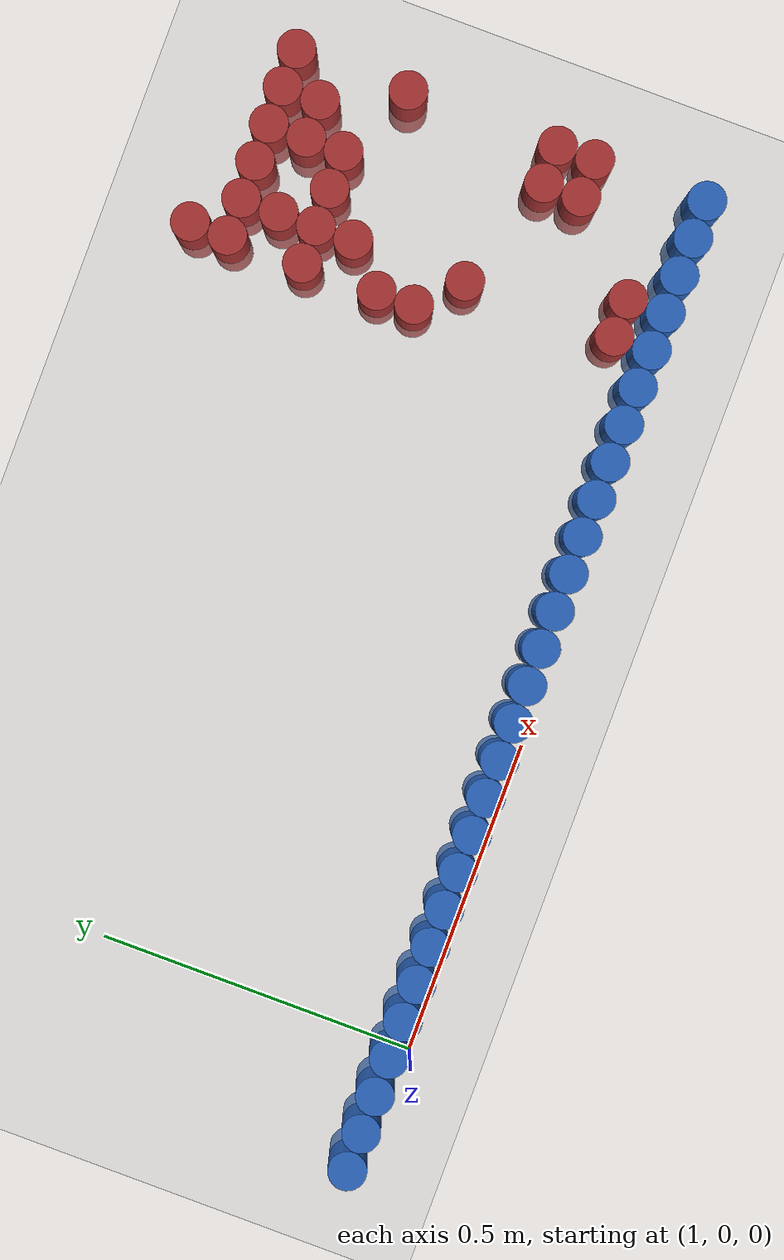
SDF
<sdf version="1.6">
 <world name="default">
  <model name="ground_plane">
   <static>1</static>
   <link name="link">
    <collision name="collision">
     <geometry><plane><normal>0 0 1</normal><size>100 100</size></plane></geometry>
     <surface><friction><ode><mu>100</mu><mu2>50</mu2></ode></friction></surface>
    </collision>
    <visual name="visual">
     <cast_shadows>0</cast_shadows>
     <geometry><plane><normal>0 0 1</normal><size>100 100</size></plane></geometry>
     <material>
      <script><uri>file://media/materials/scripts/gazebo.material</uri><name>Gazebo/Grey</name></script>
     </material>
    </visual>
   </link>
  </model>
  <model name="unit_cylinder_53">
   <static>1</static>
   <pose>0.810000 0.030000 0.000000 0.000000 0.000000 0.000000</pose>
   <link name="link">
    <inertial>
     <mass>1</mass>
     <inertia><ixx>0.145833</ixx><ixy>0</ixy><ixz>0</ixz><iyy>0.145833</iyy><iyz>0</iyz><izz>0.125</izz></inertia>
    </inertial>
    <collision name="collision">
     <geometry><cylinder><radius>0.030000</radius><length>0.5</length></cylinder></geometry>
    </collision>
    <visual name="visual">
     <geometry><cylinder><radius>0.030000</radius><length>0.5</length></cylinder></geometry>
     <material>
      <ambient>0.152000 0.379000 0.720000 1</ambient>
      <diffuse>0.152000 0.379000 0.720000 1</diffuse>
     </material>
     <material>
      <script><name>Gazebo/Grey</name><uri>file://media/materials/scripts/gazebo.material</uri></script>
     </material>
    </visual>
   </link>
  </model>
  <model name="unit_cylinder_55">
   <static>1</static>
   <pose>0.870000 0.030000 0.000000 0.000000 0.000000 0.000000</pose>
   <link name="link">
    <inertial>
     <mass>1</mass>
     <inertia><ixx>0.145833</ixx><ixy>0</ixy><ixz>0</ixz><iyy>0.145833</iyy><iyz>0</iyz><izz>0.125</izz></inertia>
    </inertial>
    <collision name="collision">
     <geometry><cylinder><radius>0.030000</radius><length>0.5</length></cylinder></geometry>
    </collision>
    <visual name="visual">
     <geometry><cylinder><radius>0.030000</radius><length>0.5</length></cylinder></geometry>
     <material>
      <ambient>0.152000 0.379000 0.720000 1</ambient>
      <diffuse>0.152000 0.379000 0.720000 1</diffuse>
     </material>
     <material>
      <script><name>Gazebo/Grey</name><uri>file://media/materials/scripts/gazebo.material</uri></script>
     </material>
    </visual>
   </link>
  </model>
  <model name="unit_cylinder_57">
   <static>1</static>
   <pose>0.930000 0.030000 0.000000 0.000000 0.000000 0.000000</pose>
   <link name="link">
    <inertial>
     <mass>1</mass>
     <inertia><ixx>0.145833</ixx><ixy>0</ixy><ixz>0</ixz><iyy>0.145833</iyy><iyz>0</iyz><izz>0.125</izz></inertia>
    </inertial>
    <collision name="collision">
     <geometry><cylinder><radius>0.030000</radius><length>0.5</length></cylinder></geometry>
    </collision>
    <visual name="visual">
     <geometry><cylinder><radius>0.030000</radius><length>0.5</length></cylinder></geometry>
     <material>
      <ambient>0.152000 0.379000 0.720000 1</ambient>
      <diffuse>0.152000 0.379000 0.720000 1</diffuse>
     </material>
     <material>
      <script><name>Gazebo/Grey</name><uri>file://media/materials/scripts/gazebo.material</uri></script>
     </material>
    </visual>
   </link>
  </model>
  <model name="unit_cylinder_59">
   <static>1</static>
   <pose>0.990000 0.030000 0.000000 0.000000 0.000000 0.000000</pose>
   <link name="link">
    <inertial>
     <mass>1</mass>
     <inertia><ixx>0.145833</ixx><ixy>0</ixy><ixz>0</ixz><iyy>0.145833</iyy><iyz>0</iyz><izz>0.125</izz></inertia>
    </inertial>
    <collision name="collision">
     <geometry><cylinder><radius>0.030000</radius><length>0.5</length></cylinder></geometry>
    </collision>
    <visual name="visual">
     <geometry><cylinder><radius>0.030000</radius><length>0.5</length></cylinder></geometry>
     <material>
      <ambient>0.152000 0.379000 0.720000 1</ambient>
      <diffuse>0.152000 0.379000 0.720000 1</diffuse>
     </material>
     <material>
      <script><name>Gazebo/Grey</name><uri>file://media/materials/scripts/gazebo.material</uri></script>
     </material>
    </visual>
   </link>
  </model>
  <model name="unit_cylinder_61">
   <static>1</static>
   <pose>1.050000 0.030000 0.000000 0.000000 0.000000 0.000000</pose>
   <link name="link">
    <inertial>
     <mass>1</mass>
     <inertia><ixx>0.145833</ixx><ixy>0</ixy><ixz>0</ixz><iyy>0.145833</iyy><iyz>0</iyz><izz>0.125</izz></inertia>
    </inertial>
    <collision name="collision">
     <geometry><cylinder><radius>0.030000</radius><length>0.5</length></cylinder></geometry>
    </collision>
    <visual name="visual">
     <geometry><cylinder><radius>0.030000</radius><length>0.5</length></cylinder></geometry>
     <material>
      <ambient>0.152000 0.379000 0.720000 1</ambient>
      <diffuse>0.152000 0.379000 0.720000 1</diffuse>
     </material>
     <material>
      <script><name>Gazebo/Grey</name><uri>file://media/materials/scripts/gazebo.material</uri></script>
     </material>
    </visual>
   </link>
  </model>
  <model name="unit_cylinder_63">
   <static>1</static>
   <pose>1.110000 0.030000 0.000000 0.000000 0.000000 0.000000</pose>
   <link name="link">
    <inertial>
     <mass>1</mass>
     <inertia><ixx>0.145833</ixx><ixy>0</ixy><ixz>0</ixz><iyy>0.145833</iyy><iyz>0</iyz><izz>0.125</izz></inertia>
    </inertial>
    <collision name="collision">
     <geometry><cylinder><radius>0.030000</radius><length>0.5</length></cylinder></geometry>
    </collision>
    <visual name="visual">
     <geometry><cylinder><radius>0.030000</radius><length>0.5</length></cylinder></geometry>
     <material>
      <ambient>0.152000 0.379000 0.720000 1</ambient>
      <diffuse>0.152000 0.379000 0.720000 1</diffuse>
     </material>
     <material>
      <script><name>Gazebo/Grey</name><uri>file://media/materials/scripts/gazebo.material</uri></script>
     </material>
    </visual>
   </link>
  </model>
  <model name="unit_cylinder_65">
   <static>1</static>
   <pose>1.170000 0.030000 0.000000 0.000000 0.000000 0.000000</pose>
   <link name="link">
    <inertial>
     <mass>1</mass>
     <inertia><ixx>0.145833</ixx><ixy>0</ixy><ixz>0</ixz><iyy>0.145833</iyy><iyz>0</iyz><izz>0.125</izz></inertia>
    </inertial>
    <collision name="collision">
     <geometry><cylinder><radius>0.030000</radius><length>0.5</length></cylinder></geometry>
    </collision>
    <visual name="visual">
     <geometry><cylinder><radius>0.030000</radius><length>0.5</length></cylinder></geometry>
     <material>
      <ambient>0.152000 0.379000 0.720000 1</ambient>
      <diffuse>0.152000 0.379000 0.720000 1</diffuse>
     </material>
     <material>
      <script><name>Gazebo/Grey</name><uri>file://media/materials/scripts/gazebo.material</uri></script>
     </material>
    </visual>
   </link>
  </model>
  <model name="unit_cylinder_67">
   <static>1</static>
   <pose>1.230000 0.030000 0.000000 0.000000 0.000000 0.000000</pose>
   <link name="link">
    <inertial>
     <mass>1</mass>
     <inertia><ixx>0.145833</ixx><ixy>0</ixy><ixz>0</ixz><iyy>0.145833</iyy><iyz>0</iyz><izz>0.125</izz></inertia>
    </inertial>
    <collision name="collision">
     <geometry><cylinder><radius>0.030000</radius><length>0.5</length></cylinder></geometry>
    </collision>
    <visual name="visual">
     <geometry><cylinder><radius>0.030000</radius><length>0.5</length></cylinder></geometry>
     <material>
      <ambient>0.152000 0.379000 0.720000 1</ambient>
      <diffuse>0.152000 0.379000 0.720000 1</diffuse>
     </material>
     <material>
      <script><name>Gazebo/Grey</name><uri>file://media/materials/scripts/gazebo.material</uri></script>
     </material>
    </visual>
   </link>
  </model>
  <model name="unit_cylinder_69">
   <static>1</static>
   <pose>1.290000 0.030000 0.000000 0.000000 0.000000 0.000000</pose>
   <link name="link">
    <inertial>
     <mass>1</mass>
     <inertia><ixx>0.145833</ixx><ixy>0</ixy><ixz>0</ixz><iyy>0.145833</iyy><iyz>0</iyz><izz>0.125</izz></inertia>
    </inertial>
    <collision name="collision">
     <geometry><cylinder><radius>0.030000</radius><length>0.5</length></cylinder></geometry>
    </collision>
    <visual name="visual">
     <geometry><cylinder><radius>0.030000</radius><length>0.5</length></cylinder></geometry>
     <material>
      <ambient>0.152000 0.379000 0.720000 1</ambient>
      <diffuse>0.152000 0.379000 0.720000 1</diffuse>
     </material>
     <material>
      <script><name>Gazebo/Grey</name><uri>file://media/materials/scripts/gazebo.material</uri></script>
     </material>
    </visual>
   </link>
  </model>
  <model name="unit_cylinder_71">
   <static>1</static>
   <pose>1.350000 0.030000 0.000000 0.000000 0.000000 0.000000</pose>
   <link name="link">
    <inertial>
     <mass>1</mass>
     <inertia><ixx>0.145833</ixx><ixy>0</ixy><ixz>0</ixz><iyy>0.145833</iyy><iyz>0</iyz><izz>0.125</izz></inertia>
    </inertial>
    <collision name="collision">
     <geometry><cylinder><radius>0.030000</radius><length>0.5</length></cylinder></geometry>
    </collision>
    <visual name="visual">
     <geometry><cylinder><radius>0.030000</radius><length>0.5</length></cylinder></geometry>
     <material>
      <ambient>0.152000 0.379000 0.720000 1</ambient>
      <diffuse>0.152000 0.379000 0.720000 1</diffuse>
     </material>
     <material>
      <script><name>Gazebo/Grey</name><uri>file://media/materials/scripts/gazebo.material</uri></script>
     </material>
    </visual>
   </link>
  </model>
  <model name="unit_cylinder_73">
   <static>1</static>
   <pose>1.410000 0.030000 0.000000 0.000000 0.000000 0.000000</pose>
   <link name="link">
    <inertial>
     <mass>1</mass>
     <inertia><ixx>0.145833</ixx><ixy>0</ixy><ixz>0</ixz><iyy>0.145833</iyy><iyz>0</iyz><izz>0.125</izz></inertia>
    </inertial>
    <collision name="collision">
     <geometry><cylinder><radius>0.030000</radius><length>0.5</length></cylinder></geometry>
    </collision>
    <visual name="visual">
     <geometry><cylinder><radius>0.030000</radius><length>0.5</length></cylinder></geometry>
     <material>
      <ambient>0.152000 0.379000 0.720000 1</ambient>
      <diffuse>0.152000 0.379000 0.720000 1</diffuse>
     </material>
     <material>
      <script><name>Gazebo/Grey</name><uri>file://media/materials/scripts/gazebo.material</uri></script>
     </material>
    </visual>
   </link>
  </model>
  <model name="unit_cylinder_75">
   <static>1</static>
   <pose>1.470000 0.030000 0.000000 0.000000 0.000000 0.000000</pose>
   <link name="link">
    <inertial>
     <mass>1</mass>
     <inertia><ixx>0.145833</ixx><ixy>0</ixy><ixz>0</ixz><iyy>0.145833</iyy><iyz>0</iyz><izz>0.125</izz></inertia>
    </inertial>
    <collision name="collision">
     <geometry><cylinder><radius>0.030000</radius><length>0.5</length></cylinder></geometry>
    </collision>
    <visual name="visual">
     <geometry><cylinder><radius>0.030000</radius><length>0.5</length></cylinder></geometry>
     <material>
      <ambient>0.152000 0.379000 0.720000 1</ambient>
      <diffuse>0.152000 0.379000 0.720000 1</diffuse>
     </material>
     <material>
      <script><name>Gazebo/Grey</name><uri>file://media/materials/scripts/gazebo.material</uri></script>
     </material>
    </visual>
   </link>
  </model>
  <model name="unit_cylinder_77">
   <static>1</static>
   <pose>1.530000 0.030000 0.000000 0.000000 0.000000 0.000000</pose>
   <link name="link">
    <inertial>
     <mass>1</mass>
     <inertia><ixx>0.145833</ixx><ixy>0</ixy><ixz>0</ixz><iyy>0.145833</iyy><iyz>0</iyz><izz>0.125</izz></inertia>
    </inertial>
    <collision name="collision">
     <geometry><cylinder><radius>0.030000</radius><length>0.5</length></cylinder></geometry>
    </collision>
    <visual name="visual">
     <geometry><cylinder><radius>0.030000</radius><length>0.5</length></cylinder></geometry>
     <material>
      <ambient>0.152000 0.379000 0.720000 1</ambient>
      <diffuse>0.152000 0.379000 0.720000 1</diffuse>
     </material>
     <material>
      <script><name>Gazebo/Grey</name><uri>file://media/materials/scripts/gazebo.material</uri></script>
     </material>
    </visual>
   </link>
  </model>
  <model name="unit_cylinder_79">
   <static>1</static>
   <pose>1.590000 0.030000 0.000000 0.000000 0.000000 0.000000</pose>
   <link name="link">
    <inertial>
     <mass>1</mass>
     <inertia><ixx>0.145833</ixx><ixy>0</ixy><ixz>0</ixz><iyy>0.145833</iyy><iyz>0</iyz><izz>0.125</izz></inertia>
    </inertial>
    <collision name="collision">
     <geometry><cylinder><radius>0.030000</radius><length>0.5</length></cylinder></geometry>
    </collision>
    <visual name="visual">
     <geometry><cylinder><radius>0.030000</radius><length>0.5</length></cylinder></geometry>
     <material>
      <ambient>0.152000 0.379000 0.720000 1</ambient>
      <diffuse>0.152000 0.379000 0.720000 1</diffuse>
     </material>
     <material>
      <script><name>Gazebo/Grey</name><uri>file://media/materials/scripts/gazebo.material</uri></script>
     </material>
    </visual>
   </link>
  </model>
  <model name="unit_cylinder_81">
   <static>1</static>
   <pose>1.650000 0.030000 0.000000 0.000000 0.000000 0.000000</pose>
   <link name="link">
    <inertial>
     <mass>1</mass>
     <inertia><ixx>0.145833</ixx><ixy>0</ixy><ixz>0</ixz><iyy>0.145833</iyy><iyz>0</iyz><izz>0.125</izz></inertia>
    </inertial>
    <collision name="collision">
     <geometry><cylinder><radius>0.030000</radius><length>0.5</length></cylinder></geometry>
    </collision>
    <visual name="visual">
     <geometry><cylinder><radius>0.030000</radius><length>0.5</length></cylinder></geometry>
     <material>
      <ambient>0.152000 0.379000 0.720000 1</ambient>
      <diffuse>0.152000 0.379000 0.720000 1</diffuse>
     </material>
     <material>
      <script><name>Gazebo/Grey</name><uri>file://media/materials/scripts/gazebo.material</uri></script>
     </material>
    </visual>
   </link>
  </model>
  <model name="unit_cylinder_83">
   <static>1</static>
   <pose>1.710000 0.030000 0.000000 0.000000 0.000000 0.000000</pose>
   <link name="link">
    <inertial>
     <mass>1</mass>
     <inertia><ixx>0.145833</ixx><ixy>0</ixy><ixz>0</ixz><iyy>0.145833</iyy><iyz>0</iyz><izz>0.125</izz></inertia>
    </inertial>
    <collision name="collision">
     <geometry><cylinder><radius>0.030000</radius><length>0.5</length></cylinder></geometry>
    </collision>
    <visual name="visual">
     <geometry><cylinder><radius>0.030000</radius><length>0.5</length></cylinder></geometry>
     <material>
      <ambient>0.152000 0.379000 0.720000 1</ambient>
      <diffuse>0.152000 0.379000 0.720000 1</diffuse>
     </material>
     <material>
      <script><name>Gazebo/Grey</name><uri>file://media/materials/scripts/gazebo.material</uri></script>
     </material>
    </visual>
   </link>
  </model>
  <model name="unit_cylinder_85">
   <static>1</static>
   <pose>1.770000 0.030000 0.000000 0.000000 0.000000 0.000000</pose>
   <link name="link">
    <inertial>
     <mass>1</mass>
     <inertia><ixx>0.145833</ixx><ixy>0</ixy><ixz>0</ixz><iyy>0.145833</iyy><iyz>0</iyz><izz>0.125</izz></inertia>
    </inertial>
    <collision name="collision">
     <geometry><cylinder><radius>0.030000</radius><length>0.5</length></cylinder></geometry>
    </collision>
    <visual name="visual">
     <geometry><cylinder><radius>0.030000</radius><length>0.5</length></cylinder></geometry>
     <material>
      <ambient>0.152000 0.379000 0.720000 1</ambient>
      <diffuse>0.152000 0.379000 0.720000 1</diffuse>
     </material>
     <material>
      <script><name>Gazebo/Grey</name><uri>file://media/materials/scripts/gazebo.material</uri></script>
     </material>
    </visual>
   </link>
  </model>
  <model name="unit_cylinder_87">
   <static>1</static>
   <pose>1.830000 0.030000 0.000000 0.000000 0.000000 0.000000</pose>
   <link name="link">
    <inertial>
     <mass>1</mass>
     <inertia><ixx>0.145833</ixx><ixy>0</ixy><ixz>0</ixz><iyy>0.145833</iyy><iyz>0</iyz><izz>0.125</izz></inertia>
    </inertial>
    <collision name="collision">
     <geometry><cylinder><radius>0.030000</radius><length>0.5</length></cylinder></geometry>
    </collision>
    <visual name="visual">
     <geometry><cylinder><radius>0.030000</radius><length>0.5</length></cylinder></geometry>
     <material>
      <ambient>0.152000 0.379000 0.720000 1</ambient>
      <diffuse>0.152000 0.379000 0.720000 1</diffuse>
     </material>
     <material>
      <script><name>Gazebo/Grey</name><uri>file://media/materials/scripts/gazebo.material</uri></script>
     </material>
    </visual>
   </link>
  </model>
  <model name="unit_cylinder_89">
   <static>1</static>
   <pose>1.890000 0.030000 0.000000 0.000000 0.000000 0.000000</pose>
   <link name="link">
    <inertial>
     <mass>1</mass>
     <inertia><ixx>0.145833</ixx><ixy>0</ixy><ixz>0</ixz><iyy>0.145833</iyy><iyz>0</iyz><izz>0.125</izz></inertia>
    </inertial>
    <collision name="collision">
     <geometry><cylinder><radius>0.030000</radius><length>0.5</length></cylinder></geometry>
    </collision>
    <visual name="visual">
     <geometry><cylinder><radius>0.030000</radius><length>0.5</length></cylinder></geometry>
     <material>
      <ambient>0.152000 0.379000 0.720000 1</ambient>
      <diffuse>0.152000 0.379000 0.720000 1</diffuse>
     </material>
     <material>
      <script><name>Gazebo/Grey</name><uri>file://media/materials/scripts/gazebo.material</uri></script>
     </material>
    </visual>
   </link>
  </model>
  <model name="unit_cylinder_91">
   <static>1</static>
   <pose>1.950000 0.030000 0.000000 0.000000 0.000000 0.000000</pose>
   <link name="link">
    <inertial>
     <mass>1</mass>
     <inertia><ixx>0.145833</ixx><ixy>0</ixy><ixz>0</ixz><iyy>0.145833</iyy><iyz>0</iyz><izz>0.125</izz></inertia>
    </inertial>
    <collision name="collision">
     <geometry><cylinder><radius>0.030000</radius><length>0.5</length></cylinder></geometry>
    </collision>
    <visual name="visual">
     <geometry><cylinder><radius>0.030000</radius><length>0.5</length></cylinder></geometry>
     <material>
      <ambient>0.152000 0.379000 0.720000 1</ambient>
      <diffuse>0.152000 0.379000 0.720000 1</diffuse>
     </material>
     <material>
      <script><name>Gazebo/Grey</name><uri>file://media/materials/scripts/gazebo.material</uri></script>
     </material>
    </visual>
   </link>
  </model>
  <model name="unit_cylinder_93">
   <static>1</static>
   <pose>2.010000 0.030000 0.000000 0.000000 0.000000 0.000000</pose>
   <link name="link">
    <inertial>
     <mass>1</mass>
     <inertia><ixx>0.145833</ixx><ixy>0</ixy><ixz>0</ixz><iyy>0.145833</iyy><iyz>0</iyz><izz>0.125</izz></inertia>
    </inertial>
    <collision name="collision">
     <geometry><cylinder><radius>0.030000</radius><length>0.5</length></cylinder></geometry>
    </collision>
    <visual name="visual">
     <geometry><cylinder><radius>0.030000</radius><length>0.5</length></cylinder></geometry>
     <material>
      <ambient>0.152000 0.379000 0.720000 1</ambient>
      <diffuse>0.152000 0.379000 0.720000 1</diffuse>
     </material>
     <material>
      <script><name>Gazebo/Grey</name><uri>file://media/materials/scripts/gazebo.material</uri></script>
     </material>
    </visual>
   </link>
  </model>
  <model name="unit_cylinder_230">
   <static>1</static>
   <pose>2.070000 0.750000 0.000000 0.000000 0.000000 0.000000</pose>
   <link name="link">
    <inertial>
     <mass>1</mass>
     <inertia><ixx>0.145833</ixx><ixy>0</ixy><ixz>0</ixz><iyy>0.145833</iyy><iyz>0</iyz><izz>0.125</izz></inertia>
    </inertial>
    <collision name="collision">
     <geometry><cylinder><radius>0.030000</radius><length>0.5</length></cylinder></geometry>
    </collision>
    <visual name="visual">
     <geometry><cylinder><radius>0.030000</radius><length>0.5</length></cylinder></geometry>
     <material>
      <ambient>0.648000 0.192000 0.192000 1</ambient>
      <diffuse>0.648000 0.192000 0.192000 1</diffuse>
     </material>
     <material>
      <script><name>Gazebo/Grey</name><uri>file://media/materials/scripts/gazebo.material</uri></script>
     </material>
    </visual>
   </link>
  </model>
  <model name="unit_cylinder_241">
   <static>1</static>
   <pose>2.070000 0.690000 0.000000 0.000000 0.000000 0.000000</pose>
   <link name="link">
    <inertial>
     <mass>1</mass>
     <inertia><ixx>0.145833</ixx><ixy>0</ixy><ixz>0</ixz><iyy>0.145833</iyy><iyz>0</iyz><izz>0.125</izz></inertia>
    </inertial>
    <collision name="collision">
     <geometry><cylinder><radius>0.030000</radius><length>0.5</length></cylinder></geometry>
    </collision>
    <visual name="visual">
     <geometry><cylinder><radius>0.030000</radius><length>0.5</length></cylinder></geometry>
     <material>
      <ambient>0.648000 0.192000 0.192000 1</ambient>
      <diffuse>0.648000 0.192000 0.192000 1</diffuse>
     </material>
     <material>
      <script><name>Gazebo/Grey</name><uri>file://media/materials/scripts/gazebo.material</uri></script>
     </material>
    </visual>
   </link>
  </model>
  <model name="unit_cylinder_242">
   <static>1</static>
   <pose>2.130000 0.690000 0.000000 0.000000 0.000000 0.000000</pose>
   <link name="link">
    <inertial>
     <mass>1</mass>
     <inertia><ixx>0.145833</ixx><ixy>0</ixy><ixz>0</ixz><iyy>0.145833</iyy><iyz>0</iyz><izz>0.125</izz></inertia>
    </inertial>
    <collision name="collision">
     <geometry><cylinder><radius>0.030000</radius><length>0.5</length></cylinder></geometry>
    </collision>
    <visual name="visual">
     <geometry><cylinder><radius>0.030000</radius><length>0.5</length></cylinder></geometry>
     <material>
      <ambient>0.648000 0.192000 0.192000 1</ambient>
      <diffuse>0.648000 0.192000 0.192000 1</diffuse>
     </material>
     <material>
      <script><name>Gazebo/Grey</name><uri>file://media/materials/scripts/gazebo.material</uri></script>
     </material>
    </visual>
   </link>
  </model>
  <model name="unit_cylinder_243">
   <static>1</static>
   <pose>2.190000 0.690000 0.000000 0.000000 0.000000 0.000000</pose>
   <link name="link">
    <inertial>
     <mass>1</mass>
     <inertia><ixx>0.145833</ixx><ixy>0</ixy><ixz>0</ixz><iyy>0.145833</iyy><iyz>0</iyz><izz>0.125</izz></inertia>
    </inertial>
    <collision name="collision">
     <geometry><cylinder><radius>0.030000</radius><length>0.5</length></cylinder></geometry>
    </collision>
    <visual name="visual">
     <geometry><cylinder><radius>0.030000</radius><length>0.5</length></cylinder></geometry>
     <material>
      <ambient>0.648000 0.192000 0.192000 1</ambient>
      <diffuse>0.648000 0.192000 0.192000 1</diffuse>
     </material>
     <material>
      <script><name>Gazebo/Grey</name><uri>file://media/materials/scripts/gazebo.material</uri></script>
     </material>
    </visual>
   </link>
  </model>
  <model name="unit_cylinder_244">
   <static>1</static>
   <pose>2.250000 0.690000 0.000000 0.000000 0.000000 0.000000</pose>
   <link name="link">
    <inertial>
     <mass>1</mass>
     <inertia><ixx>0.145833</ixx><ixy>0</ixy><ixz>0</ixz><iyy>0.145833</iyy><iyz>0</iyz><izz>0.125</izz></inertia>
    </inertial>
    <collision name="collision">
     <geometry><cylinder><radius>0.030000</radius><length>0.5</length></cylinder></geometry>
    </collision>
    <visual name="visual">
     <geometry><cylinder><radius>0.030000</radius><length>0.5</length></cylinder></geometry>
     <material>
      <ambient>0.648000 0.192000 0.192000 1</ambient>
      <diffuse>0.648000 0.192000 0.192000 1</diffuse>
     </material>
     <material>
      <script><name>Gazebo/Grey</name><uri>file://media/materials/scripts/gazebo.material</uri></script>
     </material>
    </visual>
   </link>
  </model>
  <model name="unit_cylinder_245">
   <static>1</static>
   <pose>2.310000 0.690000 0.000000 0.000000 0.000000 0.000000</pose>
   <link name="link">
    <inertial>
     <mass>1</mass>
     <inertia><ixx>0.145833</ixx><ixy>0</ixy><ixz>0</ixz><iyy>0.145833</iyy><iyz>0</iyz><izz>0.125</izz></inertia>
    </inertial>
    <collision name="collision">
     <geometry><cylinder><radius>0.030000</radius><length>0.5</length></cylinder></geometry>
    </collision>
    <visual name="visual">
     <geometry><cylinder><radius>0.030000</radius><length>0.5</length></cylinder></geometry>
     <material>
      <ambient>0.648000 0.192000 0.192000 1</ambient>
      <diffuse>0.648000 0.192000 0.192000 1</diffuse>
     </material>
     <material>
      <script><name>Gazebo/Grey</name><uri>file://media/materials/scripts/gazebo.material</uri></script>
     </material>
    </visual>
   </link>
  </model>
  <model name="unit_cylinder_246">
   <static>1</static>
   <pose>2.370000 0.690000 0.000000 0.000000 0.000000 0.000000</pose>
   <link name="link">
    <inertial>
     <mass>1</mass>
     <inertia><ixx>0.145833</ixx><ixy>0</ixy><ixz>0</ixz><iyy>0.145833</iyy><iyz>0</iyz><izz>0.125</izz></inertia>
    </inertial>
    <collision name="collision">
     <geometry><cylinder><radius>0.030000</radius><length>0.5</length></cylinder></geometry>
    </collision>
    <visual name="visual">
     <geometry><cylinder><radius>0.030000</radius><length>0.5</length></cylinder></geometry>
     <material>
      <ambient>0.648000 0.192000 0.192000 1</ambient>
      <diffuse>0.648000 0.192000 0.192000 1</diffuse>
     </material>
     <material>
      <script><name>Gazebo/Grey</name><uri>file://media/materials/scripts/gazebo.material</uri></script>
     </material>
    </visual>
   </link>
  </model>
  <model name="unit_cylinder_253">
   <static>1</static>
   <pose>2.130000 0.630000 0.000000 0.000000 0.000000 0.000000</pose>
   <link name="link">
    <inertial>
     <mass>1</mass>
     <inertia><ixx>0.145833</ixx><ixy>0</ixy><ixz>0</ixz><iyy>0.145833</iyy><iyz>0</iyz><izz>0.125</izz></inertia>
    </inertial>
    <collision name="collision">
     <geometry><cylinder><radius>0.030000</radius><length>0.5</length></cylinder></geometry>
    </collision>
    <visual name="visual">
     <geometry><cylinder><radius>0.030000</radius><length>0.5</length></cylinder></geometry>
     <material>
      <ambient>0.648000 0.192000 0.192000 1</ambient>
      <diffuse>0.648000 0.192000 0.192000 1</diffuse>
     </material>
     <material>
      <script><name>Gazebo/Grey</name><uri>file://media/materials/scripts/gazebo.material</uri></script>
     </material>
    </visual>
   </link>
  </model>
  <model name="unit_cylinder_254">
   <static>1</static>
   <pose>2.250000 0.630000 0.000000 0.000000 0.000000 0.000000</pose>
   <link name="link">
    <inertial>
     <mass>1</mass>
     <inertia><ixx>0.145833</ixx><ixy>0</ixy><ixz>0</ixz><iyy>0.145833</iyy><iyz>0</iyz><izz>0.125</izz></inertia>
    </inertial>
    <collision name="collision">
     <geometry><cylinder><radius>0.030000</radius><length>0.5</length></cylinder></geometry>
    </collision>
    <visual name="visual">
     <geometry><cylinder><radius>0.030000</radius><length>0.5</length></cylinder></geometry>
     <material>
      <ambient>0.648000 0.192000 0.192000 1</ambient>
      <diffuse>0.648000 0.192000 0.192000 1</diffuse>
     </material>
     <material>
      <script><name>Gazebo/Grey</name><uri>file://media/materials/scripts/gazebo.material</uri></script>
     </material>
    </visual>
   </link>
  </model>
  <model name="unit_cylinder_255">
   <static>1</static>
   <pose>2.310000 0.630000 0.000000 0.000000 0.000000 0.000000</pose>
   <link name="link">
    <inertial>
     <mass>1</mass>
     <inertia><ixx>0.145833</ixx><ixy>0</ixy><ixz>0</ixz><iyy>0.145833</iyy><iyz>0</iyz><izz>0.125</izz></inertia>
    </inertial>
    <collision name="collision">
     <geometry><cylinder><radius>0.030000</radius><length>0.5</length></cylinder></geometry>
    </collision>
    <visual name="visual">
     <geometry><cylinder><radius>0.030000</radius><length>0.5</length></cylinder></geometry>
     <material>
      <ambient>0.648000 0.192000 0.192000 1</ambient>
      <diffuse>0.648000 0.192000 0.192000 1</diffuse>
     </material>
     <material>
      <script><name>Gazebo/Grey</name><uri>file://media/materials/scripts/gazebo.material</uri></script>
     </material>
    </visual>
   </link>
  </model>
  <model name="unit_cylinder_263">
   <static>1</static>
   <pose>2.070000 0.570000 0.000000 0.000000 0.000000 0.000000</pose>
   <link name="link">
    <inertial>
     <mass>1</mass>
     <inertia><ixx>0.145833</ixx><ixy>0</ixy><ixz>0</ixz><iyy>0.145833</iyy><iyz>0</iyz><izz>0.125</izz></inertia>
    </inertial>
    <collision name="collision">
     <geometry><cylinder><radius>0.030000</radius><length>0.5</length></cylinder></geometry>
    </collision>
    <visual name="visual">
     <geometry><cylinder><radius>0.030000</radius><length>0.5</length></cylinder></geometry>
     <material>
      <ambient>0.648000 0.192000 0.192000 1</ambient>
      <diffuse>0.648000 0.192000 0.192000 1</diffuse>
     </material>
     <material>
      <script><name>Gazebo/Grey</name><uri>file://media/materials/scripts/gazebo.material</uri></script>
     </material>
    </visual>
   </link>
  </model>
  <model name="unit_cylinder_264">
   <static>1</static>
   <pose>2.130000 0.570000 0.000000 0.000000 0.000000 0.000000</pose>
   <link name="link">
    <inertial>
     <mass>1</mass>
     <inertia><ixx>0.145833</ixx><ixy>0</ixy><ixz>0</ixz><iyy>0.145833</iyy><iyz>0</iyz><izz>0.125</izz></inertia>
    </inertial>
    <collision name="collision">
     <geometry><cylinder><radius>0.030000</radius><length>0.5</length></cylinder></geometry>
    </collision>
    <visual name="visual">
     <geometry><cylinder><radius>0.030000</radius><length>0.5</length></cylinder></geometry>
     <material>
      <ambient>0.648000 0.192000 0.192000 1</ambient>
      <diffuse>0.648000 0.192000 0.192000 1</diffuse>
     </material>
     <material>
      <script><name>Gazebo/Grey</name><uri>file://media/materials/scripts/gazebo.material</uri></script>
     </material>
    </visual>
   </link>
  </model>
  <model name="unit_cylinder_265">
   <static>1</static>
   <pose>2.190000 0.570000 0.000000 0.000000 0.000000 0.000000</pose>
   <link name="link">
    <inertial>
     <mass>1</mass>
     <inertia><ixx>0.145833</ixx><ixy>0</ixy><ixz>0</ixz><iyy>0.145833</iyy><iyz>0</iyz><izz>0.125</izz></inertia>
    </inertial>
    <collision name="collision">
     <geometry><cylinder><radius>0.030000</radius><length>0.5</length></cylinder></geometry>
    </collision>
    <visual name="visual">
     <geometry><cylinder><radius>0.030000</radius><length>0.5</length></cylinder></geometry>
     <material>
      <ambient>0.648000 0.192000 0.192000 1</ambient>
      <diffuse>0.648000 0.192000 0.192000 1</diffuse>
     </material>
     <material>
      <script><name>Gazebo/Grey</name><uri>file://media/materials/scripts/gazebo.material</uri></script>
     </material>
    </visual>
   </link>
  </model>
  <model name="unit_cylinder_266">
   <static>1</static>
   <pose>2.250000 0.570000 0.000000 0.000000 0.000000 0.000000</pose>
   <link name="link">
    <inertial>
     <mass>1</mass>
     <inertia><ixx>0.145833</ixx><ixy>0</ixy><ixz>0</ixz><iyy>0.145833</iyy><iyz>0</iyz><izz>0.125</izz></inertia>
    </inertial>
    <collision name="collision">
     <geometry><cylinder><radius>0.030000</radius><length>0.5</length></cylinder></geometry>
    </collision>
    <visual name="visual">
     <geometry><cylinder><radius>0.030000</radius><length>0.5</length></cylinder></geometry>
     <material>
      <ambient>0.648000 0.192000 0.192000 1</ambient>
      <diffuse>0.648000 0.192000 0.192000 1</diffuse>
     </material>
     <material>
      <script><name>Gazebo/Grey</name><uri>file://media/materials/scripts/gazebo.material</uri></script>
     </material>
    </visual>
   </link>
  </model>
  <model name="unit_cylinder_274">
   <static>1</static>
   <pose>2.130000 0.510000 0.000000 0.000000 0.000000 0.000000</pose>
   <link name="link">
    <inertial>
     <mass>1</mass>
     <inertia><ixx>0.145833</ixx><ixy>0</ixy><ixz>0</ixz><iyy>0.145833</iyy><iyz>0</iyz><izz>0.125</izz></inertia>
    </inertial>
    <collision name="collision">
     <geometry><cylinder><radius>0.030000</radius><length>0.5</length></cylinder></geometry>
    </collision>
    <visual name="visual">
     <geometry><cylinder><radius>0.030000</radius><length>0.5</length></cylinder></geometry>
     <material>
      <ambient>0.648000 0.192000 0.192000 1</ambient>
      <diffuse>0.648000 0.192000 0.192000 1</diffuse>
     </material>
     <material>
      <script><name>Gazebo/Grey</name><uri>file://media/materials/scripts/gazebo.material</uri></script>
     </material>
    </visual>
   </link>
  </model>
  <model name="unit_cylinder_275">
   <static>1</static>
   <pose>2.370000 0.510000 0.000000 0.000000 0.000000 0.000000</pose>
   <link name="link">
    <inertial>
     <mass>1</mass>
     <inertia><ixx>0.145833</ixx><ixy>0</ixy><ixz>0</ixz><iyy>0.145833</iyy><iyz>0</iyz><izz>0.125</izz></inertia>
    </inertial>
    <collision name="collision">
     <geometry><cylinder><radius>0.030000</radius><length>0.5</length></cylinder></geometry>
    </collision>
    <visual name="visual">
     <geometry><cylinder><radius>0.030000</radius><length>0.5</length></cylinder></geometry>
     <material>
      <ambient>0.648000 0.192000 0.192000 1</ambient>
      <diffuse>0.648000 0.192000 0.192000 1</diffuse>
     </material>
     <material>
      <script><name>Gazebo/Grey</name><uri>file://media/materials/scripts/gazebo.material</uri></script>
     </material>
    </visual>
   </link>
  </model>
  <model name="unit_cylinder_282">
   <static>1</static>
   <pose>2.070000 0.450000 0.000000 0.000000 0.000000 0.000000</pose>
   <link name="link">
    <inertial>
     <mass>1</mass>
     <inertia><ixx>0.145833</ixx><ixy>0</ixy><ixz>0</ixz><iyy>0.145833</iyy><iyz>0</iyz><izz>0.125</izz></inertia>
    </inertial>
    <collision name="collision">
     <geometry><cylinder><radius>0.030000</radius><length>0.5</length></cylinder></geometry>
    </collision>
    <visual name="visual">
     <geometry><cylinder><radius>0.030000</radius><length>0.5</length></cylinder></geometry>
     <material>
      <ambient>0.648000 0.192000 0.192000 1</ambient>
      <diffuse>0.648000 0.192000 0.192000 1</diffuse>
     </material>
     <material>
      <script><name>Gazebo/Grey</name><uri>file://media/materials/scripts/gazebo.material</uri></script>
     </material>
    </visual>
   </link>
  </model>
  <model name="unit_cylinder_287">
   <static>1</static>
   <pose>2.070000 0.390000 0.000000 0.000000 0.000000 0.000000</pose>
   <link name="link">
    <inertial>
     <mass>1</mass>
     <inertia><ixx>0.145833</ixx><ixy>0</ixy><ixz>0</ixz><iyy>0.145833</iyy><iyz>0</iyz><izz>0.125</izz></inertia>
    </inertial>
    <collision name="collision">
     <geometry><cylinder><radius>0.030000</radius><length>0.5</length></cylinder></geometry>
    </collision>
    <visual name="visual">
     <geometry><cylinder><radius>0.030000</radius><length>0.5</length></cylinder></geometry>
     <material>
      <ambient>0.648000 0.192000 0.192000 1</ambient>
      <diffuse>0.648000 0.192000 0.192000 1</diffuse>
     </material>
     <material>
      <script><name>Gazebo/Grey</name><uri>file://media/materials/scripts/gazebo.material</uri></script>
     </material>
    </visual>
   </link>
  </model>
  <model name="unit_cylinder_293">
   <static>1</static>
   <pose>2.130000 0.330000 0.000000 0.000000 0.000000 0.000000</pose>
   <link name="link">
    <inertial>
     <mass>1</mass>
     <inertia><ixx>0.145833</ixx><ixy>0</ixy><ixz>0</ixz><iyy>0.145833</iyy><iyz>0</iyz><izz>0.125</izz></inertia>
    </inertial>
    <collision name="collision">
     <geometry><cylinder><radius>0.030000</radius><length>0.5</length></cylinder></geometry>
    </collision>
    <visual name="visual">
     <geometry><cylinder><radius>0.030000</radius><length>0.5</length></cylinder></geometry>
     <material>
      <ambient>0.648000 0.192000 0.192000 1</ambient>
      <diffuse>0.648000 0.192000 0.192000 1</diffuse>
     </material>
     <material>
      <script><name>Gazebo/Grey</name><uri>file://media/materials/scripts/gazebo.material</uri></script>
     </material>
    </visual>
   </link>
  </model>
  <model name="unit_cylinder_296">
   <static>1</static>
   <pose>2.310000 0.270000 0.000000 0.000000 0.000000 0.000000</pose>
   <link name="link">
    <inertial>
     <mass>1</mass>
     <inertia><ixx>0.145833</ixx><ixy>0</ixy><ixz>0</ixz><iyy>0.145833</iyy><iyz>0</iyz><izz>0.125</izz></inertia>
    </inertial>
    <collision name="collision">
     <geometry><cylinder><radius>0.030000</radius><length>0.5</length></cylinder></geometry>
    </collision>
    <visual name="visual">
     <geometry><cylinder><radius>0.030000</radius><length>0.5</length></cylinder></geometry>
     <material>
      <ambient>0.648000 0.192000 0.192000 1</ambient>
      <diffuse>0.648000 0.192000 0.192000 1</diffuse>
     </material>
     <material>
      <script><name>Gazebo/Grey</name><uri>file://media/materials/scripts/gazebo.material</uri></script>
     </material>
    </visual>
   </link>
  </model>
  <model name="unit_cylinder_297">
   <static>1</static>
   <pose>2.370000 0.270000 0.000000 0.000000 0.000000 0.000000</pose>
   <link name="link">
    <inertial>
     <mass>1</mass>
     <inertia><ixx>0.145833</ixx><ixy>0</ixy><ixz>0</ixz><iyy>0.145833</iyy><iyz>0</iyz><izz>0.125</izz></inertia>
    </inertial>
    <collision name="collision">
     <geometry><cylinder><radius>0.030000</radius><length>0.5</length></cylinder></geometry>
    </collision>
    <visual name="visual">
     <geometry><cylinder><radius>0.030000</radius><length>0.5</length></cylinder></geometry>
     <material>
      <ambient>0.648000 0.192000 0.192000 1</ambient>
      <diffuse>0.648000 0.192000 0.192000 1</diffuse>
     </material>
     <material>
      <script><name>Gazebo/Grey</name><uri>file://media/materials/scripts/gazebo.material</uri></script>
     </material>
    </visual>
   </link>
  </model>
  <model name="unit_cylinder_301">
   <static>1</static>
   <pose>2.310000 0.210000 0.000000 0.000000 0.000000 0.000000</pose>
   <link name="link">
    <inertial>
     <mass>1</mass>
     <inertia><ixx>0.145833</ixx><ixy>0</ixy><ixz>0</ixz><iyy>0.145833</iyy><iyz>0</iyz><izz>0.125</izz></inertia>
    </inertial>
    <collision name="collision">
     <geometry><cylinder><radius>0.030000</radius><length>0.5</length></cylinder></geometry>
    </collision>
    <visual name="visual">
     <geometry><cylinder><radius>0.030000</radius><length>0.5</length></cylinder></geometry>
     <material>
      <ambient>0.648000 0.192000 0.192000 1</ambient>
      <diffuse>0.648000 0.192000 0.192000 1</diffuse>
     </material>
     <material>
      <script><name>Gazebo/Grey</name><uri>file://media/materials/scripts/gazebo.material</uri></script>
     </material>
    </visual>
   </link>
  </model>
  <model name="unit_cylinder_302">
   <static>1</static>
   <pose>2.370000 0.210000 0.000000 0.000000 0.000000 0.000000</pose>
   <link name="link">
    <inertial>
     <mass>1</mass>
     <inertia><ixx>0.145833</ixx><ixy>0</ixy><ixz>0</ixz><iyy>0.145833</iyy><iyz>0</iyz><izz>0.125</izz></inertia>
    </inertial>
    <collision name="collision">
     <geometry><cylinder><radius>0.030000</radius><length>0.5</length></cylinder></geometry>
    </collision>
    <visual name="visual">
     <geometry><cylinder><radius>0.030000</radius><length>0.5</length></cylinder></geometry>
     <material>
      <ambient>0.648000 0.192000 0.192000 1</ambient>
      <diffuse>0.648000 0.192000 0.192000 1</diffuse>
     </material>
     <material>
      <script><name>Gazebo/Grey</name><uri>file://media/materials/scripts/gazebo.material</uri></script>
     </material>
    </visual>
   </link>
  </model>
  <model name="unit_cylinder_316">
   <static>1</static>
   <pose>2.130000 0.090000 0.000000 0.000000 0.000000 0.000000</pose>
   <link name="link">
    <inertial>
     <mass>1</mass>
     <inertia><ixx>0.145833</ixx><ixy>0</ixy><ixz>0</ixz><iyy>0.145833</iyy><iyz>0</iyz><izz>0.125</izz></inertia>
    </inertial>
    <collision name="collision">
     <geometry><cylinder><radius>0.030000</radius><length>0.5</length></cylinder></geometry>
    </collision>
    <visual name="visual">
     <geometry><cylinder><radius>0.030000</radius><length>0.5</length></cylinder></geometry>
     <material>
      <ambient>0.648000 0.192000 0.192000 1</ambient>
      <diffuse>0.648000 0.192000 0.192000 1</diffuse>
     </material>
     <material>
      <script><name>Gazebo/Grey</name><uri>file://media/materials/scripts/gazebo.material</uri></script>
     </material>
    </visual>
   </link>
  </model>
  <model name="unit_cylinder_317">
   <static>1</static>
   <pose>2.190000 0.090000 0.000000 0.000000 0.000000 0.000000</pose>
   <link name="link">
    <inertial>
     <mass>1</mass>
     <inertia><ixx>0.145833</ixx><ixy>0</ixy><ixz>0</ixz><iyy>0.145833</iyy><iyz>0</iyz><izz>0.125</izz></inertia>
    </inertial>
    <collision name="collision">
     <geometry><cylinder><radius>0.030000</radius><length>0.5</length></cylinder></geometry>
    </collision>
    <visual name="visual">
     <geometry><cylinder><radius>0.030000</radius><length>0.5</length></cylinder></geometry>
     <material>
      <ambient>0.648000 0.192000 0.192000 1</ambient>
      <diffuse>0.648000 0.192000 0.192000 1</diffuse>
     </material>
     <material>
      <script><name>Gazebo/Grey</name><uri>file://media/materials/scripts/gazebo.material</uri></script>
     </material>
    </visual>
   </link>
  </model>
  <model name="unit_cylinder_334">
   <static>1</static>
   <pose>2.070000 0.030000 0.000000 0.000000 0.000000 0.000000</pose>
   <link name="link">
    <inertial>
     <mass>1</mass>
     <inertia><ixx>0.145833</ixx><ixy>0</ixy><ixz>0</ixz><iyy>0.145833</iyy><iyz>0</iyz><izz>0.125</izz></inertia>
    </inertial>
    <collision name="collision">
     <geometry><cylinder><radius>0.030000</radius><length>0.5</length></cylinder></geometry>
    </collision>
    <visual name="visual">
     <geometry><cylinder><radius>0.030000</radius><length>0.5</length></cylinder></geometry>
     <material>
      <ambient>0.152000 0.379000 0.720000 1</ambient>
      <diffuse>0.152000 0.379000 0.720000 1</diffuse>
     </material>
     <material>
      <script><name>Gazebo/Grey</name><uri>file://media/materials/scripts/gazebo.material</uri></script>
     </material>
    </visual>
   </link>
  </model>
  <model name="unit_cylinder_335">
   <static>1</static>
   <pose>2.130000 0.030000 0.000000 0.000000 0.000000 0.000000</pose>
   <link name="link">
    <inertial>
     <mass>1</mass>
     <inertia><ixx>0.145833</ixx><ixy>0</ixy><ixz>0</ixz><iyy>0.145833</iyy><iyz>0</iyz><izz>0.125</izz></inertia>
    </inertial>
    <collision name="collision">
     <geometry><cylinder><radius>0.030000</radius><length>0.5</length></cylinder></geometry>
    </collision>
    <visual name="visual">
     <geometry><cylinder><radius>0.030000</radius><length>0.5</length></cylinder></geometry>
     <material>
      <ambient>0.152000 0.379000 0.720000 1</ambient>
      <diffuse>0.152000 0.379000 0.720000 1</diffuse>
     </material>
     <material>
      <script><name>Gazebo/Grey</name><uri>file://media/materials/scripts/gazebo.material</uri></script>
     </material>
    </visual>
   </link>
  </model>
  <model name="unit_cylinder_336">
   <static>1</static>
   <pose>2.190000 0.030000 0.000000 0.000000 0.000000 0.000000</pose>
   <link name="link">
    <inertial>
     <mass>1</mass>
     <inertia><ixx>0.145833</ixx><ixy>0</ixy><ixz>0</ixz><iyy>0.145833</iyy><iyz>0</iyz><izz>0.125</izz></inertia>
    </inertial>
    <collision name="collision">
     <geometry><cylinder><radius>0.030000</radius><length>0.5</length></cylinder></geometry>
    </collision>
    <visual name="visual">
     <geometry><cylinder><radius>0.030000</radius><length>0.5</length></cylinder></geometry>
     <material>
      <ambient>0.152000 0.379000 0.720000 1</ambient>
      <diffuse>0.152000 0.379000 0.720000 1</diffuse>
     </material>
     <material>
      <script><name>Gazebo/Grey</name><uri>file://media/materials/scripts/gazebo.material</uri></script>
     </material>
    </visual>
   </link>
  </model>
  <model name="unit_cylinder_337">
   <static>1</static>
   <pose>2.250000 0.030000 0.000000 0.000000 0.000000 0.000000</pose>
   <link name="link">
    <inertial>
     <mass>1</mass>
     <inertia><ixx>0.145833</ixx><ixy>0</ixy><ixz>0</ixz><iyy>0.145833</iyy><iyz>0</iyz><izz>0.125</izz></inertia>
    </inertial>
    <collision name="collision">
     <geometry><cylinder><radius>0.030000</radius><length>0.5</length></cylinder></geometry>
    </collision>
    <visual name="visual">
     <geometry><cylinder><radius>0.030000</radius><length>0.5</length></cylinder></geometry>
     <material>
      <ambient>0.152000 0.379000 0.720000 1</ambient>
      <diffuse>0.152000 0.379000 0.720000 1</diffuse>
     </material>
     <material>
      <script><name>Gazebo/Grey</name><uri>file://media/materials/scripts/gazebo.material</uri></script>
     </material>
    </visual>
   </link>
  </model>
  <model name="unit_cylinder_338">
   <static>1</static>
   <pose>2.310000 0.030000 0.000000 0.000000 0.000000 0.000000</pose>
   <link name="link">
    <inertial>
     <mass>1</mass>
     <inertia><ixx>0.145833</ixx><ixy>0</ixy><ixz>0</ixz><iyy>0.145833</iyy><iyz>0</iyz><izz>0.125</izz></inertia>
    </inertial>
    <collision name="collision">
     <geometry><cylinder><radius>0.030000</radius><length>0.5</length></cylinder></geometry>
    </collision>
    <visual name="visual">
     <geometry><cylinder><radius>0.030000</radius><length>0.5</length></cylinder></geometry>
     <material>
      <ambient>0.152000 0.379000 0.720000 1</ambient>
      <diffuse>0.152000 0.379000 0.720000 1</diffuse>
     </material>
     <material>
      <script><name>Gazebo/Grey</name><uri>file://media/materials/scripts/gazebo.material</uri></script>
     </material>
    </visual>
   </link>
  </model>
  <model name="unit_cylinder_339">
   <static>1</static>
   <pose>2.370000 0.030000 0.000000 0.000000 0.000000 0.000000</pose>
   <link name="link">
    <inertial>
     <mass>1</mass>
     <inertia><ixx>0.145833</ixx><ixy>0</ixy><ixz>0</ixz><iyy>0.145833</iyy><iyz>0</iyz><izz>0.125</izz></inertia>
    </inertial>
    <collision name="collision">
     <geometry><cylinder><radius>0.030000</radius><length>0.5</length></cylinder></geometry>
    </collision>
    <visual name="visual">
     <geometry><cylinder><radius>0.030000</radius><length>0.5</length></cylinder></geometry>
     <material>
      <ambient>0.152000 0.379000 0.720000 1</ambient>
      <diffuse>0.152000 0.379000 0.720000 1</diffuse>
     </material>
     <material>
      <script><name>Gazebo/Grey</name><uri>file://media/materials/scripts/gazebo.material</uri></script>
     </material>
    </visual>
   </link>
  </model>
 </world>
</sdf>
